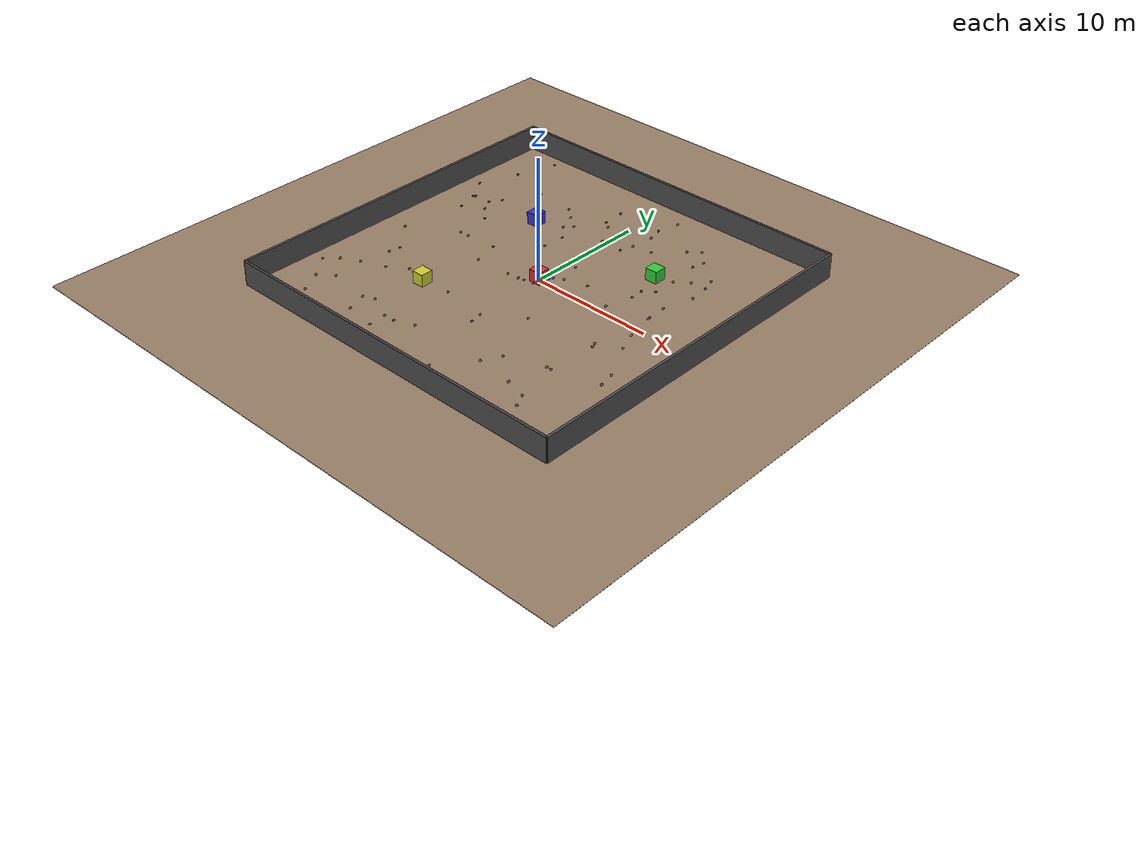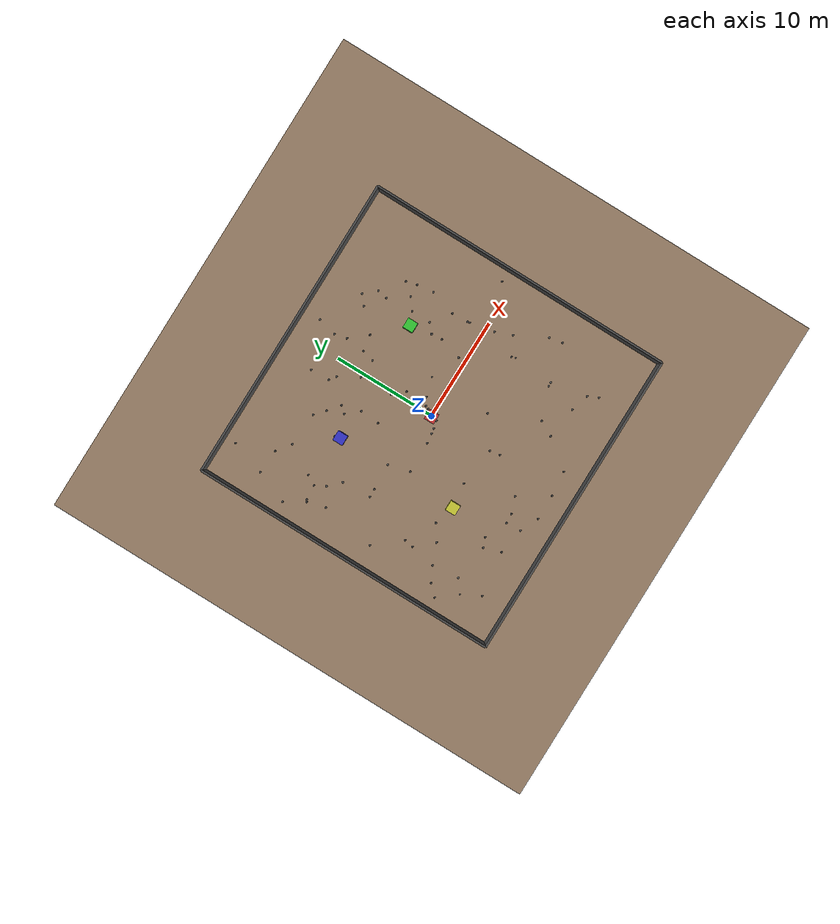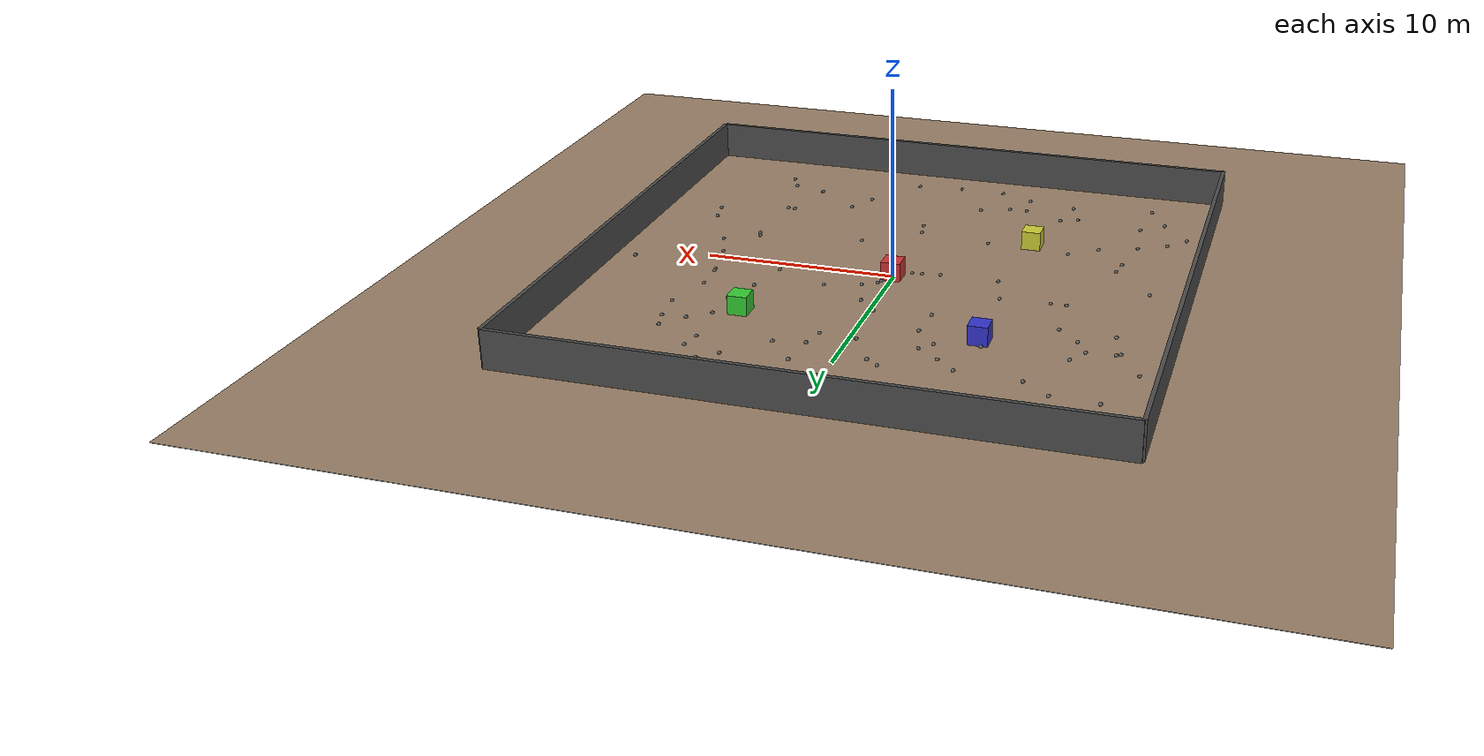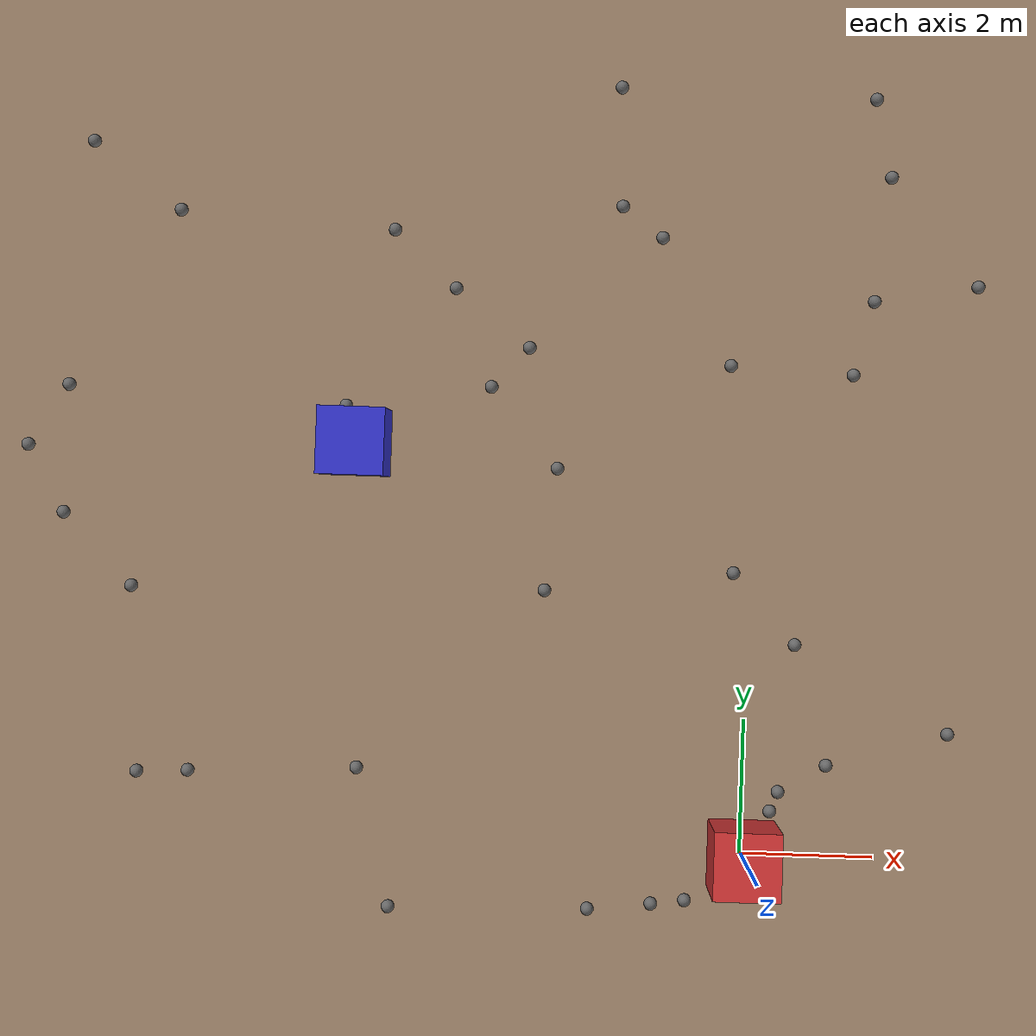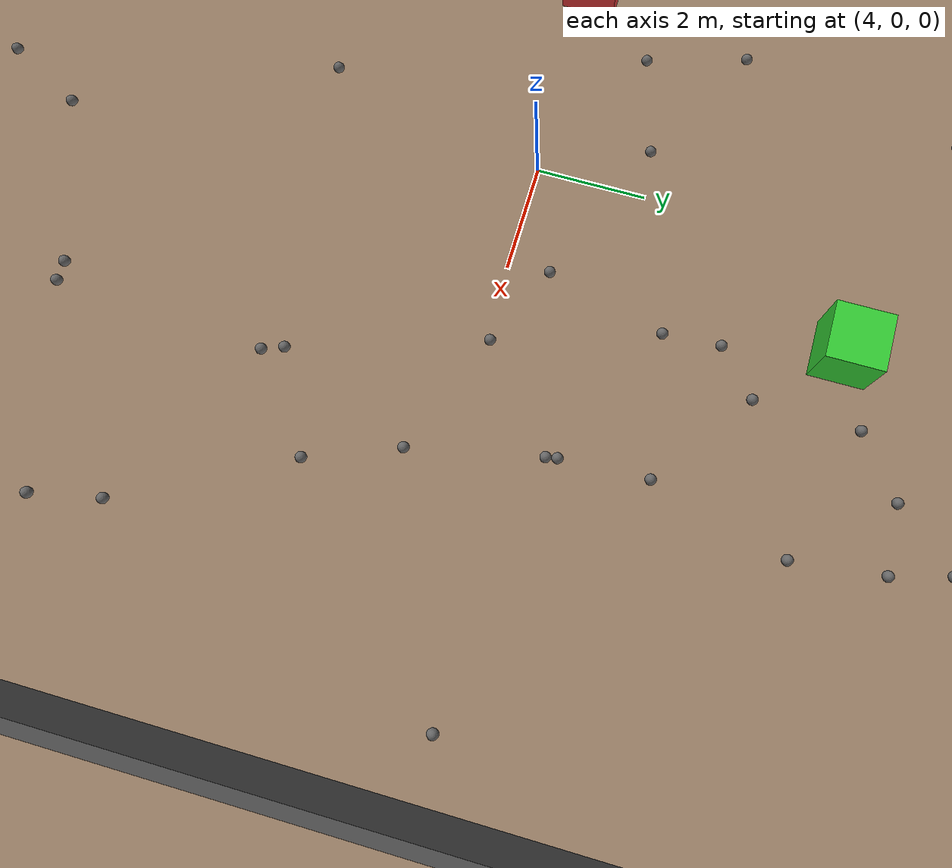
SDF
<?xml version="1.0" ?>
<sdf version="1.6">
  <world name="default">

    <!-- ─────────── ESCENA: iluminación & sombras activadas para realismo ─────────── -->
    <scene>
      <ambient>0.4 0.4 0.4 1</ambient>
      <background>0.7 0.7 0.7 1</background>
      <shadows>true</shadows>  <!-- Activamos sombras para ver mejor las irregularidades -->
    </scene>

    <!-- ─────────── PLUGINS ROS–GAZEBO ─────────── -->
    <plugin name="gazebo_ros_api_plugin" filename="libgazebo_ros_api_plugin.so"/>
    <plugin name="gazebo_ros_factory"  filename="libgazebo_ros_factory.so"/>
    <plugin name="gazebo_ros_state"    filename="libgazebo_ros_state.so"/>

    <!-- ─────────── SOL ─────────── -->
    <include><uri>model://sun</uri></include>

    <!-- 🌍 TERRENO BASE CON IMPERFECCIONES                                              -->

    <!-- Base del terreno principal -->
    <model name="ground_base">
      <static>true</static>
      <pose>0 0 -0.01 0 0 0</pose>  <!-- Ligeramente bajo para que las imperfecciones sobresalgan -->
      <link name="link">
        <collision name="collision">
          <geometry>
            <box><size>50 50 0.02</size></box>  <!-- Base grande y delgada -->
          </geometry>
          <surface>
            <friction>
              <ode><mu>0.8</mu><mu2>0.8</mu2></ode>  <!-- Fricción realista -->
            </friction>
          </surface>
        </collision>
        <visual name="visual">
          <geometry>
            <box><size>50 50 0.02</size></box>
          </geometry>
          <material>
            <ambient>0.6 0.5 0.4 1</ambient>  <!-- Color tierra -->
            <diffuse>0.6 0.5 0.4 1</diffuse>
          </material>
        </visual>
      </link>
    </model>

    <!-- 🗻 IMPERFECCIONES DEL TERRENO - MONTÍCULOS Y DEPRESIONES                       -->
    <!-- Pequeñas rocas esparcidas -->
    <model name="rock_01">
      <static>true</static>
      <pose>-3.642 -5.691 0.013 0 0 0</pose>
      <link name="link">
        <collision name="collision">
          <geometry>
            <sphere><radius>0.10</radius></sphere>
          </geometry>
        </collision>
        <visual name="visual">
          <geometry>
            <sphere><radius>0.10</radius></sphere>
          </geometry>
          <material>
            <ambient>0.4 0.4 0.4 1</ambient>
            <diffuse>0.4 0.4 0.4 1</diffuse>
          </material>
        </visual>
      </link>
    </model><model name="rock_002">
      <static>true</static>
      <pose>-12.622 5.582 0.025 0 0 0</pose>
      <link name="link">
        <collision name="collision">
          <geometry>
            <sphere><radius>0.10</radius></sphere>
          </geometry>
        </collision>
        <visual name="visual">
          <geometry>
            <sphere><radius>0.10</radius></sphere>
          </geometry>
          <material>
            <ambient>0.4 0.4 0.4 1</ambient>
            <diffuse>0.4 0.4 0.4 1</diffuse>
          </material>
        </visual>
      </link>
    </model><model name="rock_003">
      <static>true</static>
      <pose>-2.286 -0.918 0.012 0 0 0</pose>
      <link name="link">
        <collision name="collision">
          <geometry>
            <sphere><radius>0.10</radius></sphere>
          </geometry>
        </collision>
        <visual name="visual">
          <geometry>
            <sphere><radius>0.10</radius></sphere>
          </geometry>
          <material>
            <ambient>0.4 0.4 0.4 1</ambient>
            <diffuse>0.4 0.4 0.4 1</diffuse>
          </material>
        </visual>
      </link>
    </model><model name="rock_004">
      <static>true</static>
      <pose>-0.072 -0.553 0.013 0 0 0</pose>
      <link name="link">
        <collision name="collision">
          <geometry>
            <sphere><radius>0.10</radius></sphere>
          </geometry>
        </collision>
        <visual name="visual">
          <geometry>
            <sphere><radius>0.10</radius></sphere>
          </geometry>
          <material>
            <ambient>0.4 0.4 0.4 1</ambient>
            <diffuse>0.4 0.4 0.4 1</diffuse>
          </material>
        </visual>
      </link>
    </model><model name="rock_005">
      <static>true</static>
      <pose>11.759 -5.319 0.022 0 0 0</pose>
      <link name="link">
        <collision name="collision">
          <geometry>
            <sphere><radius>0.10</radius></sphere>
          </geometry>
        </collision>
        <visual name="visual">
          <geometry>
            <sphere><radius>0.10</radius></sphere>
          </geometry>
          <material>
            <ambient>0.4 0.4 0.4 1</ambient>
            <diffuse>0.4 0.4 0.4 1</diffuse>
          </material>
        </visual>
      </link>
    </model><model name="rock_006">
      <static>true</static>
      <pose>-12.941 -1.413 0.020 0 0 0</pose>
      <link name="link">
        <collision name="collision">
          <geometry>
            <sphere><radius>0.10</radius></sphere>
          </geometry>
        </collision>
        <visual name="visual">
          <geometry>
            <sphere><radius>0.10</radius></sphere>
          </geometry>
          <material>
            <ambient>0.4 0.4 0.4 1</ambient>
            <diffuse>0.4 0.4 0.4 1</diffuse>
          </material>
        </visual>
      </link>
    </model><model name="rock_007">
      <static>true</static>
      <pose>-13.776 7.471 0.020 0 0 0</pose>
      <link name="link">
        <collision name="collision">
          <geometry>
            <sphere><radius>0.10</radius></sphere>
          </geometry>
        </collision>
        <visual name="visual">
          <geometry>
            <sphere><radius>0.10</radius></sphere>
          </geometry>
          <material>
            <ambient>0.4 0.4 0.4 1</ambient>
            <diffuse>0.4 0.4 0.4 1</diffuse>
          </material>
        </visual>
      </link>
    </model><model name="rock_008">
      <static>true</static>
      <pose>8.589 -3.681 0.022 0 0 0</pose>
      <link name="link">
        <collision name="collision">
          <geometry>
            <sphere><radius>0.10</radius></sphere>
          </geometry>
        </collision>
        <visual name="visual">
          <geometry>
            <sphere><radius>0.10</radius></sphere>
          </geometry>
          <material>
            <ambient>0.4 0.4 0.4 1</ambient>
            <diffuse>0.4 0.4 0.4 1</diffuse>
          </material>
        </visual>
      </link>
    </model><model name="rock_009">
      <static>true</static>
      <pose>7.235 6.596 0.025 0 0 0</pose>
      <link name="link">
        <collision name="collision">
          <geometry>
            <sphere><radius>0.10</radius></sphere>
          </geometry>
        </collision>
        <visual name="visual">
          <geometry>
            <sphere><radius>0.10</radius></sphere>
          </geometry>
          <material>
            <ambient>0.4 0.4 0.4 1</ambient>
            <diffuse>0.4 0.4 0.4 1</diffuse>
          </material>
        </visual>
      </link>
    </model><model name="rock_010">
      <static>true</static>
      <pose>2.142 13.322 0.012 0 0 0</pose>
      <link name="link">
        <collision name="collision">
          <geometry>
            <sphere><radius>0.10</radius></sphere>
          </geometry>
        </collision>
        <visual name="visual">
          <geometry>
            <sphere><radius>0.10</radius></sphere>
          </geometry>
          <material>
            <ambient>0.4 0.4 0.4 1</ambient>
            <diffuse>0.4 0.4 0.4 1</diffuse>
          </material>
        </visual>
      </link>
    </model><model name="rock_011">
      <static>true</static>
      <pose>5.869 0.748 0.025 0 0 0</pose>
      <link name="link">
        <collision name="collision">
          <geometry>
            <sphere><radius>0.10</radius></sphere>
          </geometry>
        </collision>
        <visual name="visual">
          <geometry>
            <sphere><radius>0.10</radius></sphere>
          </geometry>
          <material>
            <ambient>0.4 0.4 0.4 1</ambient>
            <diffuse>0.4 0.4 0.4 1</diffuse>
          </material>
        </visual>
      </link>
    </model><model name="rock_012">
      <static>true</static>
      <pose>-4.592 8.408 0.020 0 0 0</pose>
      <link name="link">
        <collision name="collision">
          <geometry>
            <sphere><radius>0.10</radius></sphere>
          </geometry>
        </collision>
        <visual name="visual">
          <geometry>
            <sphere><radius>0.10</radius></sphere>
          </geometry>
          <material>
            <ambient>0.4 0.4 0.4 1</ambient>
            <diffuse>0.4 0.4 0.4 1</diffuse>
          </material>
        </visual>
      </link>
    </model><model name="rock_013">
      <static>true</static>
      <pose>1.497 7.287 0.017 0 0 0</pose>
      <link name="link">
        <collision name="collision">
          <geometry>
            <sphere><radius>0.10</radius></sphere>
          </geometry>
        </collision>
        <visual name="visual">
          <geometry>
            <sphere><radius>0.10</radius></sphere>
          </geometry>
          <material>
            <ambient>0.4 0.4 0.4 1</ambient>
            <diffuse>0.4 0.4 0.4 1</diffuse>
          </material>
        </visual>
      </link>
    </model><model name="rock_014">
      <static>true</static>
      <pose>9.589 -0.776 0.010 0 0 0</pose>
      <link name="link">
        <collision name="collision">
          <geometry>
            <sphere><radius>0.10</radius></sphere>
          </geometry>
        </collision>
        <visual name="visual">
          <geometry>
            <sphere><radius>0.10</radius></sphere>
          </geometry>
          <material>
            <ambient>0.4 0.4 0.4 1</ambient>
            <diffuse>0.4 0.4 0.4 1</diffuse>
          </material>
        </visual>
      </link>
    </model><model name="rock_015">
      <static>true</static>
      <pose>9.051 -11.059 0.030 0 0 0</pose>
      <link name="link">
        <collision name="collision">
          <geometry>
            <sphere><radius>0.10</radius></sphere>
          </geometry>
        </collision>
        <visual name="visual">
          <geometry>
            <sphere><radius>0.10</radius></sphere>
          </geometry>
          <material>
            <ambient>0.4 0.4 0.4 1</ambient>
            <diffuse>0.4 0.4 0.4 1</diffuse>
          </material>
        </visual>
      </link>
    </model><model name="rock_016">
      <static>true</static>
      <pose>0.322 -7.138 0.013 0 0 0</pose>
      <link name="link">
        <collision name="collision">
          <geometry>
            <sphere><radius>0.10</radius></sphere>
          </geometry>
        </collision>
        <visual name="visual">
          <geometry>
            <sphere><radius>0.10</radius></sphere>
          </geometry>
          <material>
            <ambient>0.4 0.4 0.4 1</ambient>
            <diffuse>0.4 0.4 0.4 1</diffuse>
          </material>
        </visual>
      </link>
    </model><model name="rock_017">
      <static>true</static>
      <pose>-12.923 -7.971 0.026 0 0 0</pose>
      <link name="link">
        <collision name="collision">
          <geometry>
            <sphere><radius>0.10</radius></sphere>
          </geometry>
        </collision>
        <visual name="visual">
          <geometry>
            <sphere><radius>0.10</radius></sphere>
          </geometry>
          <material>
            <ambient>0.4 0.4 0.4 1</ambient>
            <diffuse>0.4 0.4 0.4 1</diffuse>
          </material>
        </visual>
      </link>
    </model><model name="rock_018">
      <static>true</static>
      <pose>6.995 9.208 0.017 0 0 0</pose>
      <link name="link">
        <collision name="collision">
          <geometry>
            <sphere><radius>0.10</radius></sphere>
          </geometry>
        </collision>
        <visual name="visual">
          <geometry>
            <sphere><radius>0.10</radius></sphere>
          </geometry>
          <material>
            <ambient>0.4 0.4 0.4 1</ambient>
            <diffuse>0.4 0.4 0.4 1</diffuse>
          </material>
        </visual>
      </link>
    </model><model name="rock_019">
      <static>true</static>
      <pose>-10.430 6.741 0.017 0 0 0</pose>
      <link name="link">
        <collision name="collision">
          <geometry>
            <sphere><radius>0.10</radius></sphere>
          </geometry>
        </collision>
        <visual name="visual">
          <geometry>
            <sphere><radius>0.10</radius></sphere>
          </geometry>
          <material>
            <ambient>0.4 0.4 0.4 1</ambient>
            <diffuse>0.4 0.4 0.4 1</diffuse>
          </material>
        </visual>
      </link>
    </model><model name="rock_020">
      <static>true</static>
      <pose>-3.446 7.537 0.016 0 0 0</pose>
      <link name="link">
        <collision name="collision">
          <geometry>
            <sphere><radius>0.10</radius></sphere>
          </geometry>
        </collision>
        <visual name="visual">
          <geometry>
            <sphere><radius>0.10</radius></sphere>
          </geometry>
          <material>
            <ambient>0.4 0.4 0.4 1</ambient>
            <diffuse>0.4 0.4 0.4 1</diffuse>
          </material>
        </visual>
      </link>
    </model><model name="rock_021">
      <static>true</static>
      <pose>7.987 -7.595 0.025 0 0 0</pose>
      <link name="link">
        <collision name="collision">
          <geometry>
            <sphere><radius>0.10</radius></sphere>
          </geometry>
        </collision>
        <visual name="visual">
          <geometry>
            <sphere><radius>0.10</radius></sphere>
          </geometry>
          <material>
            <ambient>0.4 0.4 0.4 1</ambient>
            <diffuse>0.4 0.4 0.4 1</diffuse>
          </material>
        </visual>
      </link>
    </model><model name="rock_022">
      <static>true</static>
      <pose>8.447 -3.304 0.019 0 0 0</pose>
      <link name="link">
        <collision name="collision">
          <geometry>
            <sphere><radius>0.10</radius></sphere>
          </geometry>
        </collision>
        <visual name="visual">
          <geometry>
            <sphere><radius>0.10</radius></sphere>
          </geometry>
          <material>
            <ambient>0.4 0.4 0.4 1</ambient>
            <diffuse>0.4 0.4 0.4 1</diffuse>
          </material>
        </visual>
      </link>
    </model><model name="rock_023">
      <static>true</static>
      <pose>9.108 1.575 0.021 0 0 0</pose>
      <link name="link">
        <collision name="collision">
          <geometry>
            <sphere><radius>0.10</radius></sphere>
          </geometry>
        </collision>
        <visual name="visual">
          <geometry>
            <sphere><radius>0.10</radius></sphere>
          </geometry>
          <material>
            <ambient>0.4 0.4 0.4 1</ambient>
            <diffuse>0.4 0.4 0.4 1</diffuse>
          </material>
        </visual>
      </link>
    </model><model name="rock_024">
      <static>true</static>
      <pose>-9.364 3.719 0.021 0 0 0</pose>
      <link name="link">
        <collision name="collision">
          <geometry>
            <sphere><radius>0.10</radius></sphere>
          </geometry>
        </collision>
        <visual name="visual">
          <geometry>
            <sphere><radius>0.10</radius></sphere>
          </geometry>
          <material>
            <ambient>0.4 0.4 0.4 1</ambient>
            <diffuse>0.4 0.4 0.4 1</diffuse>
          </material>
        </visual>
      </link>
    </model><model name="rock_025">
      <static>true</static>
      <pose>-8.026 -5.440 0.012 0 0 0</pose>
      <link name="link">
        <collision name="collision">
          <geometry>
            <sphere><radius>0.10</radius></sphere>
          </geometry>
        </collision>
        <visual name="visual">
          <geometry>
            <sphere><radius>0.10</radius></sphere>
          </geometry>
          <material>
            <ambient>0.4 0.4 0.4 1</ambient>
            <diffuse>0.4 0.4 0.4 1</diffuse>
          </material>
        </visual>
      </link>
    </model><model name="rock_026">
      <static>true</static>
      <pose>-11.008 -4.779 0.023 0 0 0</pose>
      <link name="link">
        <collision name="collision">
          <geometry>
            <sphere><radius>0.10</radius></sphere>
          </geometry>
        </collision>
        <visual name="visual">
          <geometry>
            <sphere><radius>0.10</radius></sphere>
          </geometry>
          <material>
            <ambient>0.4 0.4 0.4 1</ambient>
            <diffuse>0.4 0.4 0.4 1</diffuse>
          </material>
        </visual>
      </link>
    </model><model name="rock_027">
      <static>true</static>
      <pose>9.532 -12.050 0.029 0 0 0</pose>
      <link name="link">
        <collision name="collision">
          <geometry>
            <sphere><radius>0.10</radius></sphere>
          </geometry>
        </collision>
        <visual name="visual">
          <geometry>
            <sphere><radius>0.10</radius></sphere>
          </geometry>
          <material>
            <ambient>0.4 0.4 0.4 1</ambient>
            <diffuse>0.4 0.4 0.4 1</diffuse>
          </material>
        </visual>
      </link>
    </model><model name="rock_028">
      <static>true</static>
      <pose>-7.116 -11.935 0.021 0 0 0</pose>
      <link name="link">
        <collision name="collision">
          <geometry>
            <sphere><radius>0.10</radius></sphere>
          </geometry>
        </collision>
        <visual name="visual">
          <geometry>
            <sphere><radius>0.10</radius></sphere>
          </geometry>
          <material>
            <ambient>0.4 0.4 0.4 1</ambient>
            <diffuse>0.4 0.4 0.4 1</diffuse>
          </material>
        </visual>
      </link>
    </model><model name="rock_029">
      <static>true</static>
      <pose>-1.472 9.286 0.028 0 0 0</pose>
      <link name="link">
        <collision name="collision">
          <geometry>
            <sphere><radius>0.10</radius></sphere>
          </geometry>
        </collision>
        <visual name="visual">
          <geometry>
            <sphere><radius>0.10</radius></sphere>
          </geometry>
          <material>
            <ambient>0.4 0.4 0.4 1</ambient>
            <diffuse>0.4 0.4 0.4 1</diffuse>
          </material>
        </visual>
      </link>
    </model><model name="rock_030">
      <static>true</static>
      <pose>-2.152 -10.276 0.023 0 0 0</pose>
      <link name="link">
        <collision name="collision">
          <geometry>
            <sphere><radius>0.10</radius></sphere>
          </geometry>
        </collision>
        <visual name="visual">
          <geometry>
            <sphere><radius>0.10</radius></sphere>
          </geometry>
          <material>
            <ambient>0.4 0.4 0.4 1</ambient>
            <diffuse>0.4 0.4 0.4 1</diffuse>
          </material>
        </visual>
      </link>
    </model><model name="rock_031">
      <static>true</static>
      <pose>6.392 3.979 0.026 0 0 0</pose>
      <link name="link">
        <collision name="collision">
          <geometry>
            <sphere><radius>0.10</radius></sphere>
          </geometry>
        </collision>
        <visual name="visual">
          <geometry>
            <sphere><radius>0.10</radius></sphere>
          </geometry>
          <material>
            <ambient>0.4 0.4 0.4 1</ambient>
            <diffuse>0.4 0.4 0.4 1</diffuse>
          </material>
        </visual>
      </link>
    </model><model name="rock_032">
      <static>true</static>
      <pose>-10.440 4.796 0.011 0 0 0</pose>
      <link name="link">
        <collision name="collision">
          <geometry>
            <sphere><radius>0.10</radius></sphere>
          </geometry>
        </collision>
        <visual name="visual">
          <geometry>
            <sphere><radius>0.10</radius></sphere>
          </geometry>
          <material>
            <ambient>0.4 0.4 0.4 1</ambient>
            <diffuse>0.4 0.4 0.4 1</diffuse>
          </material>
        </visual>
      </link>
    </model><model name="rock_033">
      <static>true</static>
      <pose>-11.450 -12.557 0.021 0 0 0</pose>
      <link name="link">
        <collision name="collision">
          <geometry>
            <sphere><radius>0.10</radius></sphere>
          </geometry>
        </collision>
        <visual name="visual">
          <geometry>
            <sphere><radius>0.10</radius></sphere>
          </geometry>
          <material>
            <ambient>0.4 0.4 0.4 1</ambient>
            <diffuse>0.4 0.4 0.4 1</diffuse>
          </material>
        </visual>
      </link>
    </model><model name="rock_034">
      <static>true</static>
      <pose>-13.842 -8.938 0.023 0 0 0</pose>
      <link name="link">
        <collision name="collision">
          <geometry>
            <sphere><radius>0.10</radius></sphere>
          </geometry>
        </collision>
        <visual name="visual">
          <geometry>
            <sphere><radius>0.10</radius></sphere>
          </geometry>
          <material>
            <ambient>0.4 0.4 0.4 1</ambient>
            <diffuse>0.4 0.4 0.4 1</diffuse>
          </material>
        </visual>
      </link>
    </model><model name="rock_035">
      <static>true</static>
      <pose>-11.467 -7.216 0.011 0 0 0</pose>
      <link name="link">
        <collision name="collision">
          <geometry>
            <sphere><radius>0.10</radius></sphere>
          </geometry>
        </collision>
        <visual name="visual">
          <geometry>
            <sphere><radius>0.10</radius></sphere>
          </geometry>
          <material>
            <ambient>0.4 0.4 0.4 1</ambient>
            <diffuse>0.4 0.4 0.4 1</diffuse>
          </material>
        </visual>
      </link>
    </model><model name="rock_036">
      <static>true</static>
      <pose>-4.639 -10.900 0.026 0 0 0</pose>
      <link name="link">
        <collision name="collision">
          <geometry>
            <sphere><radius>0.10</radius></sphere>
          </geometry>
        </collision>
        <visual name="visual">
          <geometry>
            <sphere><radius>0.10</radius></sphere>
          </geometry>
          <material>
            <ambient>0.4 0.4 0.4 1</ambient>
            <diffuse>0.4 0.4 0.4 1</diffuse>
          </material>
        </visual>
      </link>
    </model><model name="rock_037">
      <static>true</static>
      <pose>-8.828 9.462 0.029 0 0 0</pose>
      <link name="link">
        <collision name="collision">
          <geometry>
            <sphere><radius>0.10</radius></sphere>
          </geometry>
        </collision>
        <visual name="visual">
          <geometry>
            <sphere><radius>0.10</radius></sphere>
          </geometry>
          <material>
            <ambient>0.4 0.4 0.4 1</ambient>
            <diffuse>0.4 0.4 0.4 1</diffuse>
          </material>
        </visual>
      </link>
    </model><model name="rock_038">
      <static>true</static>
      <pose>-3.707 -10.864 0.025 0 0 0</pose>
      <link name="link">
        <collision name="collision">
          <geometry>
            <sphere><radius>0.10</radius></sphere>
          </geometry>
        </collision>
        <visual name="visual">
          <geometry>
            <sphere><radius>0.10</radius></sphere>
          </geometry>
          <material>
            <ambient>0.4 0.4 0.4 1</ambient>
            <diffuse>0.4 0.4 0.4 1</diffuse>
          </material>
        </visual>
      </link>
    </model><model name="rock_039">
      <static>true</static>
      <pose>-4.556 -12.366 0.018 0 0 0</pose>
      <link name="link">
        <collision name="collision">
          <geometry>
            <sphere><radius>0.10</radius></sphere>
          </geometry>
        </collision>
        <visual name="visual">
          <geometry>
            <sphere><radius>0.10</radius></sphere>
          </geometry>
          <material>
            <ambient>0.4 0.4 0.4 1</ambient>
            <diffuse>0.4 0.4 0.4 1</diffuse>
          </material>
        </visual>
      </link>
    </model><model name="rock_040">
      <static>true</static>
      <pose>-6.751 -9.947 0.026 0 0 0</pose>
      <link name="link">
        <collision name="collision">
          <geometry>
            <sphere><radius>0.10</radius></sphere>
          </geometry>
        </collision>
        <visual name="visual">
          <geometry>
            <sphere><radius>0.10</radius></sphere>
          </geometry>
          <material>
            <ambient>0.4 0.4 0.4 1</ambient>
            <diffuse>0.4 0.4 0.4 1</diffuse>
          </material>
        </visual>
      </link>
    </model><model name="rock_041">
      <static>true</static>
      <pose>7.308 -10.553 0.030 0 0 0</pose>
      <link name="link">
        <collision name="collision">
          <geometry>
            <sphere><radius>0.10</radius></sphere>
          </geometry>
        </collision>
        <visual name="visual">
          <geometry>
            <sphere><radius>0.10</radius></sphere>
          </geometry>
          <material>
            <ambient>0.4 0.4 0.4 1</ambient>
            <diffuse>0.4 0.4 0.4 1</diffuse>
          </material>
        </visual>
      </link>
    </model><model name="rock_042">
      <static>true</static>
      <pose>-0.368 7.368 0.022 0 0 0</pose>
      <link name="link">
        <collision name="collision">
          <geometry>
            <sphere><radius>0.10</radius></sphere>
          </geometry>
        </collision>
        <visual name="visual">
          <geometry>
            <sphere><radius>0.10</radius></sphere>
          </geometry>
          <material>
            <ambient>0.4 0.4 0.4 1</ambient>
            <diffuse>0.4 0.4 0.4 1</diffuse>
          </material>
        </visual>
      </link>
    </model><model name="rock_043">
      <static>true</static>
      <pose>-11.014 5.808 0.021 0 0 0</pose>
      <link name="link">
        <collision name="collision">
          <geometry>
            <sphere><radius>0.10</radius></sphere>
          </geometry>
        </collision>
        <visual name="visual">
          <geometry>
            <sphere><radius>0.10</radius></sphere>
          </geometry>
          <material>
            <ambient>0.4 0.4 0.4 1</ambient>
            <diffuse>0.4 0.4 0.4 1</diffuse>
          </material>
        </visual>
      </link>
    </model><model name="rock_044">
      <static>true</static>
      <pose>7.366 0.090 0.018 0 0 0</pose>
      <link name="link">
        <collision name="collision">
          <geometry>
            <sphere><radius>0.10</radius></sphere>
          </geometry>
        </collision>
        <visual name="visual">
          <geometry>
            <sphere><radius>0.10</radius></sphere>
          </geometry>
          <material>
            <ambient>0.4 0.4 0.4 1</ambient>
            <diffuse>0.4 0.4 0.4 1</diffuse>
          </material>
        </visual>
      </link>
    </model><model name="rock_045">
      <static>true</static>
      <pose>7.194 4.703 0.017 0 0 0</pose>
      <link name="link">
        <collision name="collision">
          <geometry>
            <sphere><radius>0.10</radius></sphere>
          </geometry>
        </collision>
        <visual name="visual">
          <geometry>
            <sphere><radius>0.10</radius></sphere>
          </geometry>
          <material>
            <ambient>0.4 0.4 0.4 1</ambient>
            <diffuse>0.4 0.4 0.4 1</diffuse>
          </material>
        </visual>
      </link>
    </model><model name="rock_046">
      <static>true</static>
      <pose>-5.556 9.273 0.014 0 0 0</pose>
      <link name="link">
        <collision name="collision">
          <geometry>
            <sphere><radius>0.10</radius></sphere>
          </geometry>
        </collision>
        <visual name="visual">
          <geometry>
            <sphere><radius>0.10</radius></sphere>
          </geometry>
          <material>
            <ambient>0.4 0.4 0.4 1</ambient>
            <diffuse>0.4 0.4 0.4 1</diffuse>
          </material>
        </visual>
      </link>
    </model><model name="rock_047">
      <static>true</static>
      <pose>-1.330 -0.807 0.017 0 0 0</pose>
      <link name="link">
        <collision name="collision">
          <geometry>
            <sphere><radius>0.10</radius></sphere>
          </geometry>
        </collision>
        <visual name="visual">
          <geometry>
            <sphere><radius>0.10</radius></sphere>
          </geometry>
          <material>
            <ambient>0.4 0.4 0.4 1</ambient>
            <diffuse>0.4 0.4 0.4 1</diffuse>
          </material>
        </visual>
      </link>
    </model><model name="rock_048">
      <static>true</static>
      <pose>-8.398 0.961 0.011 0 0 0</pose>
      <link name="link">
        <collision name="collision">
          <geometry>
            <sphere><radius>0.10</radius></sphere>
          </geometry>
        </collision>
        <visual name="visual">
          <geometry>
            <sphere><radius>0.10</radius></sphere>
          </geometry>
          <material>
            <ambient>0.4 0.4 0.4 1</ambient>
            <diffuse>0.4 0.4 0.4 1</diffuse>
          </material>
        </visual>
      </link>
    </model><model name="rock_049">
      <static>true</static>
      <pose>-4.004 6.921 0.020 0 0 0</pose>
      <link name="link">
        <collision name="collision">
          <geometry>
            <sphere><radius>0.10</radius></sphere>
          </geometry>
        </collision>
        <visual name="visual">
          <geometry>
            <sphere><radius>0.10</radius></sphere>
          </geometry>
          <material>
            <ambient>0.4 0.4 0.4 1</ambient>
            <diffuse>0.4 0.4 0.4 1</diffuse>
          </material>
        </visual>
      </link>
    </model><model name="rock_050">
      <static>true</static>
      <pose>4.964 -8.725 0.022 0 0 0</pose>
      <link name="link">
        <collision name="collision">
          <geometry>
            <sphere><radius>0.10</radius></sphere>
          </geometry>
        </collision>
        <visual name="visual">
          <geometry>
            <sphere><radius>0.10</radius></sphere>
          </geometry>
          <material>
            <ambient>0.4 0.4 0.4 1</ambient>
            <diffuse>0.4 0.4 0.4 1</diffuse>
          </material>
        </visual>
      </link>
    </model><model name="rock_051">
      <static>true</static>
      <pose>-0.237 4.218 0.024 0 0 0</pose>
      <link name="link">
        <collision name="collision">
          <geometry>
            <sphere><radius>0.10</radius></sphere>
          </geometry>
        </collision>
        <visual name="visual">
          <geometry>
            <sphere><radius>0.10</radius></sphere>
          </geometry>
          <material>
            <ambient>0.4 0.4 0.4 1</ambient>
            <diffuse>0.4 0.4 0.4 1</diffuse>
          </material>
        </visual>
      </link>
    </model><model name="rock_052">
      <static>true</static>
      <pose>-9.173 0.921 0.011 0 0 0</pose>
      <link name="link">
        <collision name="collision">
          <geometry>
            <sphere><radius>0.10</radius></sphere>
          </geometry>
        </collision>
        <visual name="visual">
          <geometry>
            <sphere><radius>0.10</radius></sphere>
          </geometry>
          <material>
            <ambient>0.4 0.4 0.4 1</ambient>
            <diffuse>0.4 0.4 0.4 1</diffuse>
          </material>
        </visual>
      </link>
    </model><model name="rock_053">
      <static>true</static>
      <pose>-0.337 -13.149 0.025 0 0 0</pose>
      <link name="link">
        <collision name="collision">
          <geometry>
            <sphere><radius>0.10</radius></sphere>
          </geometry>
        </collision>
        <visual name="visual">
          <geometry>
            <sphere><radius>0.10</radius></sphere>
          </geometry>
          <material>
            <ambient>0.4 0.4 0.4 1</ambient>
            <diffuse>0.4 0.4 0.4 1</diffuse>
          </material>
        </visual>
      </link>
    </model><model name="rock_054">
      <static>true</static>
      <pose>0.423 0.643 0.021 0 0 0</pose>
      <link name="link">
        <collision name="collision">
          <geometry>
            <sphere><radius>0.10</radius></sphere>
          </geometry>
        </collision>
        <visual name="visual">
          <geometry>
            <sphere><radius>0.10</radius></sphere>
          </geometry>
          <material>
            <ambient>0.4 0.4 0.4 1</ambient>
            <diffuse>0.4 0.4 0.4 1</diffuse>
          </material>
        </visual>
      </link>
    </model><model name="rock_055">
      <static>true</static>
      <pose>-12.131 3.825 0.012 0 0 0</pose>
      <link name="link">
        <collision name="collision">
          <geometry>
            <sphere><radius>0.10</radius></sphere>
          </geometry>
        </collision>
        <visual name="visual">
          <geometry>
            <sphere><radius>0.10</radius></sphere>
          </geometry>
          <material>
            <ambient>0.4 0.4 0.4 1</ambient>
            <diffuse>0.4 0.4 0.4 1</diffuse>
          </material>
        </visual>
      </link>
    </model><model name="rock_056">
      <static>true</static>
      <pose>2.957 -4.173 0.017 0 0 0</pose>
      <link name="link">
        <collision name="collision">
          <geometry>
            <sphere><radius>0.10</radius></sphere>
          </geometry>
        </collision>
        <visual name="visual">
          <geometry>
            <sphere><radius>0.10</radius></sphere>
          </geometry>
          <material>
            <ambient>0.4 0.4 0.4 1</ambient>
            <diffuse>0.4 0.4 0.4 1</diffuse>
          </material>
        </visual>
      </link>
    </model><model name="rock_057">
      <static>true</static>
      <pose>0.727 3.162 0.019 0 0 0</pose>
      <link name="link">
        <collision name="collision">
          <geometry>
            <sphere><radius>0.10</radius></sphere>
          </geometry>
        </collision>
        <visual name="visual">
          <geometry>
            <sphere><radius>0.10</radius></sphere>
          </geometry>
          <material>
            <ambient>0.4 0.4 0.4 1</ambient>
            <diffuse>0.4 0.4 0.4 1</diffuse>
          </material>
        </visual>
      </link>
    </model><model name="rock_058">
      <static>true</static>
      <pose>-10.847 -3.866 0.016 0 0 0</pose>
      <link name="link">
        <collision name="collision">
          <geometry>
            <sphere><radius>0.10</radius></sphere>
          </geometry>
        </collision>
        <visual name="visual">
          <geometry>
            <sphere><radius>0.10</radius></sphere>
          </geometry>
          <material>
            <ambient>0.4 0.4 0.4 1</ambient>
            <diffuse>0.4 0.4 0.4 1</diffuse>
          </material>
        </visual>
      </link>
    </model><model name="rock_059">
      <static>true</static>
      <pose>-2.168 11.571 0.023 0 0 0</pose>
      <link name="link">
        <collision name="collision">
          <geometry>
            <sphere><radius>0.10</radius></sphere>
          </geometry>
        </collision>
        <visual name="visual">
          <geometry>
            <sphere><radius>0.10</radius></sphere>
          </geometry>
          <material>
            <ambient>0.4 0.4 0.4 1</ambient>
            <diffuse>0.4 0.4 0.4 1</diffuse>
          </material>
        </visual>
      </link>
    </model><model name="rock_060">
      <static>true</static>
      <pose>-2.096 9.746 0.022 0 0 0</pose>
      <link name="link">
        <collision name="collision">
          <geometry>
            <sphere><radius>0.10</radius></sphere>
          </geometry>
        </collision>
        <visual name="visual">
          <geometry>
            <sphere><radius>0.10</radius></sphere>
          </geometry>
          <material>
            <ambient>0.4 0.4 0.4 1</ambient>
            <diffuse>0.4 0.4 0.4 1</diffuse>
          </material>
        </visual>
      </link>
    </model><model name="rock_061">
      <static>true</static>
      <pose>6.451 2.939 0.024 0 0 0</pose>
      <link name="link">
        <collision name="collision">
          <geometry>
            <sphere><radius>0.10</radius></sphere>
          </geometry>
        </collision>
        <visual name="visual">
          <geometry>
            <sphere><radius>0.10</radius></sphere>
          </geometry>
          <material>
            <ambient>0.4 0.4 0.4 1</ambient>
            <diffuse>0.4 0.4 0.4 1</diffuse>
          </material>
        </visual>
      </link>
    </model><model name="rock_062">
      <static>true</static>
      <pose>9.701 5.839 0.029 0 0 0</pose>
      <link name="link">
        <collision name="collision">
          <geometry>
            <sphere><radius>0.10</radius></sphere>
          </geometry>
        </collision>
        <visual name="visual">
          <geometry>
            <sphere><radius>0.10</radius></sphere>
          </geometry>
          <material>
            <ambient>0.4 0.4 0.4 1</ambient>
            <diffuse>0.4 0.4 0.4 1</diffuse>
          </material>
        </visual>
      </link>
    </model><model name="rock_063">
      <static>true</static>
      <pose>3.082 1.890 0.011 0 0 0</pose>
      <link name="link">
        <collision name="collision">
          <geometry>
            <sphere><radius>0.10</radius></sphere>
          </geometry>
        </collision>
        <visual name="visual">
          <geometry>
            <sphere><radius>0.10</radius></sphere>
          </geometry>
          <material>
            <ambient>0.4 0.4 0.4 1</ambient>
            <diffuse>0.4 0.4 0.4 1</diffuse>
          </material>
        </visual>
      </link>
    </model><model name="rock_064">
      <static>true</static>
      <pose>-5.295 -0.986 0.012 0 0 0</pose>
      <link name="link">
        <collision name="collision">
          <geometry>
            <sphere><radius>0.10</radius></sphere>
          </geometry>
        </collision>
        <visual name="visual">
          <geometry>
            <sphere><radius>0.10</radius></sphere>
          </geometry>
          <material>
            <ambient>0.4 0.4 0.4 1</ambient>
            <diffuse>0.4 0.4 0.4 1</diffuse>
          </material>
        </visual>
      </link>
    </model><model name="rock_065">
      <static>true</static>
      <pose>2.103 -12.898 0.023 0 0 0</pose>
      <link name="link">
        <collision name="collision">
          <geometry>
            <sphere><radius>0.10</radius></sphere>
          </geometry>
        </collision>
        <visual name="visual">
          <geometry>
            <sphere><radius>0.10</radius></sphere>
          </geometry>
          <material>
            <ambient>0.4 0.4 0.4 1</ambient>
            <diffuse>0.4 0.4 0.4 1</diffuse>
          </material>
        </visual>
      </link>
    </model><model name="rock_066">
      <static>true</static>
      <pose>9.515 7.479 0.013 0 0 0</pose>
      <link name="link">
        <collision name="collision">
          <geometry>
            <sphere><radius>0.10</radius></sphere>
          </geometry>
        </collision>
        <visual name="visual">
          <geometry>
            <sphere><radius>0.10</radius></sphere>
          </geometry>
          <material>
            <ambient>0.4 0.4 0.4 1</ambient>
            <diffuse>0.4 0.4 0.4 1</diffuse>
          </material>
        </visual>
      </link>
    </model><model name="rock_067">
      <static>true</static>
      <pose>-2.793 -13.169 0.015 0 0 0</pose>
      <link name="link">
        <collision name="collision">
          <geometry>
            <sphere><radius>0.10</radius></sphere>
          </geometry>
        </collision>
        <visual name="visual">
          <geometry>
            <sphere><radius>0.10</radius></sphere>
          </geometry>
          <material>
            <ambient>0.4 0.4 0.4 1</ambient>
            <diffuse>0.4 0.4 0.4 1</diffuse>
          </material>
        </visual>
      </link>
    </model><model name="rock_068">
      <static>true</static>
      <pose>-6.205 6.564 0.018 0 0 0</pose>
      <link name="link">
        <collision name="collision">
          <geometry>
            <sphere><radius>0.10</radius></sphere>
          </geometry>
        </collision>
        <visual name="visual">
          <geometry>
            <sphere><radius>0.10</radius></sphere>
          </geometry>
          <material>
            <ambient>0.4 0.4 0.4 1</ambient>
            <diffuse>0.4 0.4 0.4 1</diffuse>
          </material>
        </visual>
      </link>
    </model><model name="rock_069">
      <static>true</static>
      <pose>0.537 0.939 0.027 0 0 0</pose>
      <link name="link">
        <collision name="collision">
          <geometry>
            <sphere><radius>0.10</radius></sphere>
          </geometry>
        </collision>
        <visual name="visual">
          <geometry>
            <sphere><radius>0.10</radius></sphere>
          </geometry>
          <material>
            <ambient>0.4 0.4 0.4 1</ambient>
            <diffuse>0.4 0.4 0.4 1</diffuse>
          </material>
        </visual>
      </link>
    </model><model name="rock_070">
      <static>true</static>
      <pose>-10.197 10.475 0.014 0 0 0</pose>
      <link name="link">
        <collision name="collision">
          <geometry>
            <sphere><radius>0.10</radius></sphere>
          </geometry>
        </collision>
        <visual name="visual">
          <geometry>
            <sphere><radius>0.10</radius></sphere>
          </geometry>
          <material>
            <ambient>0.4 0.4 0.4 1</ambient>
            <diffuse>0.4 0.4 0.4 1</diffuse>
          </material>
        </visual>
      </link>
    </model><model name="rock_071">
      <static>true</static>
      <pose>3.359 8.697 0.015 0 0 0</pose>
      <link name="link">
        <collision name="collision">
          <geometry>
            <sphere><radius>0.10</radius></sphere>
          </geometry>
        </collision>
        <visual name="visual">
          <geometry>
            <sphere><radius>0.10</radius></sphere>
          </geometry>
          <material>
            <ambient>0.4 0.4 0.4 1</ambient>
            <diffuse>0.4 0.4 0.4 1</diffuse>
          </material>
        </visual>
      </link>
    </model><model name="rock_072">
      <static>true</static>
      <pose>5.816 5.653 0.018 0 0 0</pose>
      <link name="link">
        <collision name="collision">
          <geometry>
            <sphere><radius>0.10</radius></sphere>
          </geometry>
        </collision>
        <visual name="visual">
          <geometry>
            <sphere><radius>0.10</radius></sphere>
          </geometry>
          <material>
            <ambient>0.4 0.4 0.4 1</ambient>
            <diffuse>0.4 0.4 0.4 1</diffuse>
          </material>
        </visual>
      </link>
    </model><model name="rock_073">
      <static>true</static>
      <pose>-11.211 -9.820 0.029 0 0 0</pose>
      <link name="link">
        <collision name="collision">
          <geometry>
            <sphere><radius>0.10</radius></sphere>
          </geometry>
        </collision>
        <visual name="visual">
          <geometry>
            <sphere><radius>0.10</radius></sphere>
          </geometry>
          <material>
            <ambient>0.4 0.4 0.4 1</ambient>
            <diffuse>0.4 0.4 0.4 1</diffuse>
          </material>
        </visual>
      </link>
    </model><model name="rock_074">
      <static>true</static>
      <pose>5.283 10.568 0.026 0 0 0</pose>
      <link name="link">
        <collision name="collision">
          <geometry>
            <sphere><radius>0.10</radius></sphere>
          </geometry>
        </collision>
        <visual name="visual">
          <geometry>
            <sphere><radius>0.10</radius></sphere>
          </geometry>
          <material>
            <ambient>0.4 0.4 0.4 1</ambient>
            <diffuse>0.4 0.4 0.4 1</diffuse>
          </material>
        </visual>
      </link>
    </model><model name="rock_075">
      <static>true</static>
      <pose>8.358 -7.589 0.021 0 0 0</pose>
      <link name="link">
        <collision name="collision">
          <geometry>
            <sphere><radius>0.10</radius></sphere>
          </geometry>
        </collision>
        <visual name="visual">
          <geometry>
            <sphere><radius>0.10</radius></sphere>
          </geometry>
          <material>
            <ambient>0.4 0.4 0.4 1</ambient>
            <diffuse>0.4 0.4 0.4 1</diffuse>
          </material>
        </visual>
      </link>
    </model><model name="rock_076">
      <static>true</static>
      <pose>-12.424 5.692 0.028 0 0 0</pose>
      <link name="link">
        <collision name="collision">
          <geometry>
            <sphere><radius>0.10</radius></sphere>
          </geometry>
        </collision>
        <visual name="visual">
          <geometry>
            <sphere><radius>0.10</radius></sphere>
          </geometry>
          <material>
            <ambient>0.4 0.4 0.4 1</ambient>
            <diffuse>0.4 0.4 0.4 1</diffuse>
          </material>
        </visual>
      </link>
    </model><model name="rock_077">
      <static>true</static>
      <pose>-3.094 3.861 0.025 0 0 0</pose>
      <link name="link">
        <collision name="collision">
          <geometry>
            <sphere><radius>0.10</radius></sphere>
          </geometry>
        </collision>
        <visual name="visual">
          <geometry>
            <sphere><radius>0.10</radius></sphere>
          </geometry>
          <material>
            <ambient>0.4 0.4 0.4 1</ambient>
            <diffuse>0.4 0.4 0.4 1</diffuse>
          </material>
        </visual>
      </link>
    </model><model name="rock_078">
      <static>true</static>
      <pose>12.011 -6.570 0.030 0 0 0</pose>
      <link name="link">
        <collision name="collision">
          <geometry>
            <sphere><radius>0.10</radius></sphere>
          </geometry>
        </collision>
        <visual name="visual">
          <geometry>
            <sphere><radius>0.10</radius></sphere>
          </geometry>
          <material>
            <ambient>0.4 0.4 0.4 1</ambient>
            <diffuse>0.4 0.4 0.4 1</diffuse>
          </material>
        </visual>
      </link>
    </model><model name="rock_079">
      <static>true</static>
      <pose>10.215 -2.382 0.017 0 0 0</pose>
      <link name="link">
        <collision name="collision">
          <geometry>
            <sphere><radius>0.10</radius></sphere>
          </geometry>
        </collision>
        <visual name="visual">
          <geometry>
            <sphere><radius>0.10</radius></sphere>
          </geometry>
          <material>
            <ambient>0.4 0.4 0.4 1</ambient>
            <diffuse>0.4 0.4 0.4 1</diffuse>
          </material>
        </visual>
      </link>
    </model><model name="rock_080">
      <static>true</static>
      <pose>-5.848 1.088 0.018 0 0 0</pose>
      <link name="link">
        <collision name="collision">
          <geometry>
            <sphere><radius>0.10</radius></sphere>
          </geometry>
        </collision>
        <visual name="visual">
          <geometry>
            <sphere><radius>0.10</radius></sphere>
          </geometry>
          <material>
            <ambient>0.4 0.4 0.4 1</ambient>
            <diffuse>0.4 0.4 0.4 1</diffuse>
          </material>
        </visual>
      </link>
    </model><model name="rock_081">
      <static>true</static>
      <pose>-7.668 -10.309 0.021 0 0 0</pose>
      <link name="link">
        <collision name="collision">
          <geometry>
            <sphere><radius>0.10</radius></sphere>
          </geometry>
        </collision>
        <visual name="visual">
          <geometry>
            <sphere><radius>0.10</radius></sphere>
          </geometry>
          <material>
            <ambient>0.4 0.4 0.4 1</ambient>
            <diffuse>0.4 0.4 0.4 1</diffuse>
          </material>
        </visual>
      </link>
    </model><model name="rock_082">
      <static>true</static>
      <pose>0.143 -6.162 0.019 0 0 0</pose>
      <link name="link">
        <collision name="collision">
          <geometry>
            <sphere><radius>0.10</radius></sphere>
          </geometry>
        </collision>
        <visual name="visual">
          <geometry>
            <sphere><radius>0.10</radius></sphere>
          </geometry>
          <material>
            <ambient>0.4 0.4 0.4 1</ambient>
            <diffuse>0.4 0.4 0.4 1</diffuse>
          </material>
        </visual>
      </link>
    </model><model name="rock_083">
      <static>true</static>
      <pose>-0.823 -0.738 0.015 0 0 0</pose>
      <link name="link">
        <collision name="collision">
          <geometry>
            <sphere><radius>0.10</radius></sphere>
          </geometry>
        </collision>
        <visual name="visual">
          <geometry>
            <sphere><radius>0.10</radius></sphere>
          </geometry>
          <material>
            <ambient>0.4 0.4 0.4 1</ambient>
            <diffuse>0.4 0.4 0.4 1</diffuse>
          </material>
        </visual>
      </link>
    </model><model name="rock_084">
      <static>true</static>
      <pose>1.786 8.421 0.017 0 0 0</pose>
      <link name="link">
        <collision name="collision">
          <geometry>
            <sphere><radius>0.10</radius></sphere>
          </geometry>
        </collision>
        <visual name="visual">
          <geometry>
            <sphere><radius>0.10</radius></sphere>
          </geometry>
          <material>
            <ambient>0.4 0.4 0.4 1</ambient>
            <diffuse>0.4 0.4 0.4 1</diffuse>
          </material>
        </visual>
      </link>
    </model><model name="rock_085">
      <static>true</static>
      <pose>1.990 10.326 0.028 0 0 0</pose>
      <link name="link">
        <collision name="collision">
          <geometry>
            <sphere><radius>0.10</radius></sphere>
          </geometry>
        </collision>
        <visual name="visual">
          <geometry>
            <sphere><radius>0.10</radius></sphere>
          </geometry>
          <material>
            <ambient>0.4 0.4 0.4 1</ambient>
            <diffuse>0.4 0.4 0.4 1</diffuse>
          </material>
        </visual>
      </link>
    </model><model name="rock_086">
      <static>true</static>
      <pose>1.727 11.520 0.023 0 0 0</pose>
      <link name="link">
        <collision name="collision">
          <geometry>
            <sphere><radius>0.10</radius></sphere>
          </geometry>
        </collision>
        <visual name="visual">
          <geometry>
            <sphere><radius>0.10</radius></sphere>
          </geometry>
          <material>
            <ambient>0.4 0.4 0.4 1</ambient>
            <diffuse>0.4 0.4 0.4 1</diffuse>
          </material>
        </visual>
      </link>
    </model><model name="rock_087">
      <static>true</static>
      <pose>7.195 10.196 0.016 0 0 0</pose>
      <link name="link">
        <collision name="collision">
          <geometry>
            <sphere><radius>0.10</radius></sphere>
          </geometry>
        </collision>
        <visual name="visual">
          <geometry>
            <sphere><radius>0.10</radius></sphere>
          </geometry>
          <material>
            <ambient>0.4 0.4 0.4 1</ambient>
            <diffuse>0.4 0.4 0.4 1</diffuse>
          </material>
        </visual>
      </link>
    </model><model name="rock_088">
      <static>true</static>
      <pose>-11.479 13.904 0.026 0 0 0</pose>
      <link name="link">
        <collision name="collision">
          <geometry>
            <sphere><radius>0.10</radius></sphere>
          </geometry>
        </collision>
        <visual name="visual">
          <geometry>
            <sphere><radius>0.10</radius></sphere>
          </geometry>
          <material>
            <ambient>0.4 0.4 0.4 1</ambient>
            <diffuse>0.4 0.4 0.4 1</diffuse>
          </material>
        </visual>
      </link>
    </model><model name="rock_089">
      <static>true</static>
      <pose>9.070 1.772 0.011 0 0 0</pose>
      <link name="link">
        <collision name="collision">
          <geometry>
            <sphere><radius>0.10</radius></sphere>
          </geometry>
        </collision>
        <visual name="visual">
          <geometry>
            <sphere><radius>0.10</radius></sphere>
          </geometry>
          <material>
            <ambient>0.4 0.4 0.4 1</ambient>
            <diffuse>0.4 0.4 0.4 1</diffuse>
          </material>
        </visual>
      </link>
    </model><model name="rock_090">
      <static>true</static>
      <pose>9.233 8.515 0.019 0 0 0</pose>
      <link name="link">
        <collision name="collision">
          <geometry>
            <sphere><radius>0.10</radius></sphere>
          </geometry>
        </collision>
        <visual name="visual">
          <geometry>
            <sphere><radius>0.10</radius></sphere>
          </geometry>
          <material>
            <ambient>0.4 0.4 0.4 1</ambient>
            <diffuse>0.4 0.4 0.4 1</diffuse>
          </material>
        </visual>
      </link>
    </model><model name="rock_091">
      <static>true</static>
      <pose>13.837 1.070 0.027 0 0 0</pose>
      <link name="link">
        <collision name="collision">
          <geometry>
            <sphere><radius>0.10</radius></sphere>
          </geometry>
        </collision>
        <visual name="visual">
          <geometry>
            <sphere><radius>0.10</radius></sphere>
          </geometry>
          <material>
            <ambient>0.4 0.4 0.4 1</ambient>
            <diffuse>0.4 0.4 0.4 1</diffuse>
          </material>
        </visual>
      </link>
    </model><model name="rock_092">
      <static>true</static>
      <pose>-12.530 10.613 0.030 0 0 0</pose>
      <link name="link">
        <collision name="collision">
          <geometry>
            <sphere><radius>0.10</radius></sphere>
          </geometry>
        </collision>
        <visual name="visual">
          <geometry>
            <sphere><radius>0.10</radius></sphere>
          </geometry>
          <material>
            <ambient>0.4 0.4 0.4 1</ambient>
            <diffuse>0.4 0.4 0.4 1</diffuse>
          </material>
        </visual>
      </link>
    </model><model name="rock_093">
      <static>true</static>
      <pose>8.290 7.410 0.025 0 0 0</pose>
      <link name="link">
        <collision name="collision">
          <geometry>
            <sphere><radius>0.10</radius></sphere>
          </geometry>
        </collision>
        <visual name="visual">
          <geometry>
            <sphere><radius>0.10</radius></sphere>
          </geometry>
          <material>
            <ambient>0.4 0.4 0.4 1</ambient>
            <diffuse>0.4 0.4 0.4 1</diffuse>
          </material>
        </visual>
      </link>
    </model><model name="rock_094">
      <static>true</static>
      <pose>1.254 1.357 0.015 0 0 0</pose>
      <link name="link">
        <collision name="collision">
          <geometry>
            <sphere><radius>0.10</radius></sphere>
          </geometry>
        </collision>
        <visual name="visual">
          <geometry>
            <sphere><radius>0.10</radius></sphere>
          </geometry>
          <material>
            <ambient>0.4 0.4 0.4 1</ambient>
            <diffuse>0.4 0.4 0.4 1</diffuse>
          </material>
        </visual>
      </link>
    </model><model name="rock_095">
      <static>true</static>
      <pose>6.166 11.319 0.020 0 0 0</pose>
      <link name="link">
        <collision name="collision">
          <geometry>
            <sphere><radius>0.10</radius></sphere>
          </geometry>
        </collision>
        <visual name="visual">
          <geometry>
            <sphere><radius>0.10</radius></sphere>
          </geometry>
          <material>
            <ambient>0.4 0.4 0.4 1</ambient>
            <diffuse>0.4 0.4 0.4 1</diffuse>
          </material>
        </visual>
      </link>
    </model><model name="rock_096">
      <static>true</static>
      <pose>4.207 -10.150 0.020 0 0 0</pose>
      <link name="link">
        <collision name="collision">
          <geometry>
            <sphere><radius>0.10</radius></sphere>
          </geometry>
        </collision>
        <visual name="visual">
          <geometry>
            <sphere><radius>0.10</radius></sphere>
          </geometry>
          <material>
            <ambient>0.4 0.4 0.4 1</ambient>
            <diffuse>0.4 0.4 0.4 1</diffuse>
          </material>
        </visual>
      </link>
    </model><model name="rock_097">
      <static>true</static>
      <pose>-2.960 5.713 0.025 0 0 0</pose>
      <link name="link">
        <collision name="collision">
          <geometry>
            <sphere><radius>0.10</radius></sphere>
          </geometry>
        </collision>
        <visual name="visual">
          <geometry>
            <sphere><radius>0.10</radius></sphere>
          </geometry>
          <material>
            <ambient>0.4 0.4 0.4 1</ambient>
            <diffuse>0.4 0.4 0.4 1</diffuse>
          </material>
        </visual>
      </link>
    </model><model name="rock_098">
      <static>true</static>
      <pose>9.001 3.367 0.012 0 0 0</pose>
      <link name="link">
        <collision name="collision">
          <geometry>
            <sphere><radius>0.10</radius></sphere>
          </geometry>
        </collision>
        <visual name="visual">
          <geometry>
            <sphere><radius>0.10</radius></sphere>
          </geometry>
          <material>
            <ambient>0.4 0.4 0.4 1</ambient>
            <diffuse>0.4 0.4 0.4 1</diffuse>
          </material>
        </visual>
      </link>
    </model><model name="rock_099">
      <static>true</static>
      <pose>-12.401 -10.731 0.030 0 0 0</pose>
      <link name="link">
        <collision name="collision">
          <geometry>
            <sphere><radius>0.10</radius></sphere>
          </geometry>
        </collision>
        <visual name="visual">
          <geometry>
            <sphere><radius>0.10</radius></sphere>
          </geometry>
          <material>
            <ambient>0.4 0.4 0.4 1</ambient>
            <diffuse>0.4 0.4 0.4 1</diffuse>
          </material>
        </visual>
      </link>
    </model><model name="rock_100">
      <static>true</static>
      <pose>-9.506 -6.433 0.025 0 0 0</pose>
      <link name="link">
        <collision name="collision">
          <geometry>
            <sphere><radius>0.10</radius></sphere>
          </geometry>
        </collision>
        <visual name="visual">
          <geometry>
            <sphere><radius>0.10</radius></sphere>
          </geometry>
          <material>
            <ambient>0.4 0.4 0.4 1</ambient>
            <diffuse>0.4 0.4 0.4 1</diffuse>
          </material>
        </visual>
      </link>
    </model>

    <!-- ─────────── PAREDES 30x30 (MISMAS DE ANTES) ─────────── -->
    <model name="wall_left">
      <static>true</static>
      <pose>-15 0 1 0 0 0</pose>
      <link name="link">
        <collision name="collision">
          <geometry>
            <box><size>0.2 30 2</size></box>
          </geometry>
        </collision>
        <visual name="visual">
          <geometry>
            <box><size>0.2 30 2</size></box>
          </geometry>
          <material>
            <ambient>0.3 0.3 0.3 1</ambient>
            <diffuse>0.3 0.3 0.3 1</diffuse>
          </material>
        </visual>
      </link>
    </model>

    <model name="wall_right">
      <static>true</static>
      <pose>15 0 1 0 0 0</pose>
      <link name="link">
        <collision name="collision">
          <geometry>
            <box><size>0.2 30 2</size></box>
          </geometry>
        </collision>
        <visual name="visual">
          <geometry>
            <box><size>0.2 30 2</size></box>
          </geometry>
          <material>
            <ambient>0.3 0.3 0.3 1</ambient>
            <diffuse>0.3 0.3 0.3 1</diffuse>
          </material>
        </visual>
      </link>
    </model>

    <model name="wall_bottom">
      <static>true</static>
      <pose>0 -15 1 0 0 0</pose>
      <link name="link">
        <collision name="collision">
          <geometry>
            <box><size>30 0.2 2</size></box>
          </geometry>
        </collision>
        <visual name="visual">
          <geometry>
            <box><size>30 0.2 2</size></box>
          </geometry>
          <material>
            <ambient>0.3 0.3 0.3 1</ambient>
            <diffuse>0.3 0.3 0.3 1</diffuse>
          </material>
        </visual>
      </link>
    </model>

    <model name="wall_top">
      <static>true</static>
      <pose>0 15 1 0 0 0</pose>
      <link name="link">
        <collision name="collision">
          <geometry>
            <box><size>30 0.2 2</size></box>
          </geometry>
        </collision>
        <visual name="visual">
          <geometry>
            <box><size>30 0.2 2</size></box>
          </geometry>
          <material>
            <ambient>0.3 0.3 0.3 1</ambient>
            <diffuse>0.3 0.3 0.3 1</diffuse>
          </material>
        </visual>
      </link>
    </model>

    <!-- 📦 CAJAS DINÁMICAS (MISMAS DE ANTES)                                            -->

    <model name="box_00">
      <pose>0 0 0.5 0 0 0</pose>
      <static>false</static>
      <link name="link">
        <inertial>
          <mass>1.0</mass>
          <inertia>
            <ixx>0.167</ixx><iyy>0.167</iyy><izz>0.167</izz>
            <ixy>0</ixy><ixz>0</ixz><iyz>0</iyz>
          </inertia>
        </inertial>
        <visual name="visual">
          <geometry>
            <box><size>1 1 1</size></box>
          </geometry>
          <material>
            <ambient>0.8 0.2 0.2 1</ambient>
            <diffuse>0.8 0.2 0.2 1</diffuse>
          </material>
        </visual>
        <collision name="collision">
          <geometry>
            <box><size>1 1 1</size></box>
          </geometry>
        </collision>
      </link>
    </model>

    <model name="box_01">
      <pose>6 6 0.5 0 0 0</pose>
      <static>false</static>
      <link name="link">
        <inertial>
          <mass>1.0</mass>
          <inertia>
            <ixx>0.167</ixx><iyy>0.167</iyy><izz>0.167</izz>
            <ixy>0</ixy><ixz>0</ixz><iyz>0</iyz>
          </inertia>
        </inertial>
        <visual name="visual">
          <geometry>
            <box><size>1 1 1</size></box>
          </geometry>
          <material>
            <ambient>0.2 0.8 0.2 1</ambient>
            <diffuse>0.2 0.8 0.2 1</diffuse>
          </material>
        </visual>
        <collision name="collision">
          <geometry>
            <box><size>1 1 1</size></box>
          </geometry>
        </collision>
      </link>
    </model>

    <model name="box_02">
      <pose>-6 6 0.5 0 0 0</pose>
      <static>false</static>
      <link name="link">
        <inertial>
          <mass>1.0</mass>
          <inertia>
            <ixx>0.167</ixx><iyy>0.167</iyy><izz>0.167</izz>
            <ixy>0</ixy><ixz>0</ixz><iyz>0</iyz>
          </inertia>
        </inertial>
        <visual name="visual">
          <geometry>
            <box><size>1 1 1</size></box>
          </geometry>
          <material>
            <ambient>0.2 0.2 0.8 1</ambient>
            <diffuse>0.2 0.2 0.8 1</diffuse>
          </material>
        </visual>
        <collision name="collision">
          <geometry>
            <box><size>1 1 1</size></box>
          </geometry>
        </collision>
      </link>
    </model>

    <model name="box_03">
      <pose>-6 -6 0.5 0 0 0</pose>
      <static>false</static>
      <link name="link">
        <inertial>
          <mass>1.0</mass>
          <inertia>
            <ixx>0.167</ixx><iyy>0.167</iyy><izz>0.167</izz>
            <ixy>0</ixy><ixz>0</ixz><iyz>0</iyz>
          </inertia>
        </inertial>
        <visual name="visual">
          <geometry>
            <box><size>1 1 1</size></box>
          </geometry>
          <material>
            <ambient>0.8 0.8 0.2 1</ambient>
            <diffuse>0.8 0.8 0.2 1</diffuse>
          </material>
        </visual>
        <collision name="collision">
          <geometry>
            <box><size>1 1 1</size></box>
          </geometry>
        </collision>
      </link>
    </model>

    <!-- ─────────── FÍSICA ─────────── -->
    <physics name="default_physics" type="ode">
      <real_time_factor>1.0</real_time_factor>
      <real_time_update_rate>1000</real_time_update_rate>
      <max_step_size>0.004</max_step_size>
      <use_real_time>false</use_real_time>
      <ode>
        <solver><type>quick</type><iters>40</iters><sor>1.3</sor></solver>
        <constraints><cfm>1e-5</cfm><erp>0.3</erp></constraints>
      </ode>
    </physics>

    <!-- ─────────── GUI ─────────── -->
    <gui fullscreen="0">
      <camera name="user_camera">
        <pose>0 -25 20 0 0.6 1.57</pose>
        <view_controller>orbit</view_controller>
        <projection_type>perspective</projection_type>
      </camera>
    </gui>

  </world>
</sdf>
